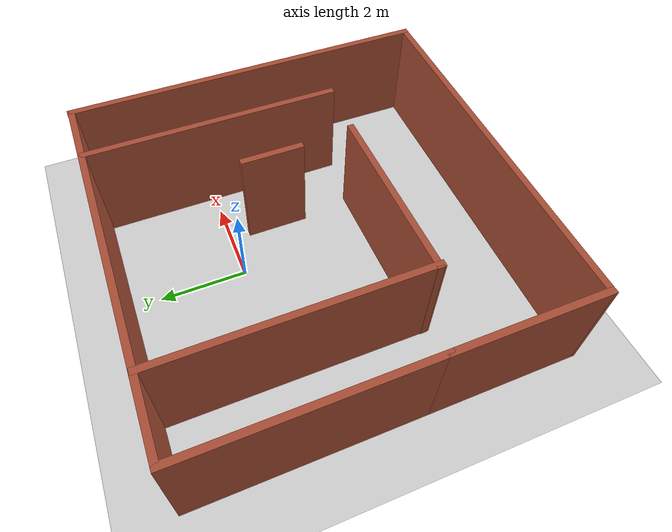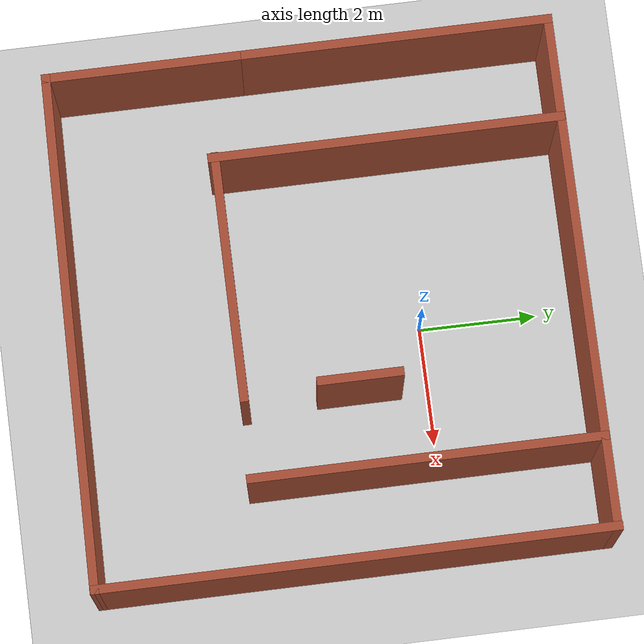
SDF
<sdf version="1.7">
 <world name="default">
  <light name="sun" type="directional">
   <pose>0 0 10 0 -0 0</pose>
   <diffuse>0.8 0.8 0.8 1</diffuse>
   <specular>0.2 0.2 0.2 1</specular>
   <attenuation>
    <range>1000</range>
    <constant>0.9</constant>
    <linear>0.01</linear>
    <quadratic>0.001</quadratic>
   </attenuation>
   <direction>-0.5 0.1 -0.9</direction>
   <spot><inner_angle>0</inner_angle><outer_angle>0</outer_angle><falloff>0</falloff></spot>
  </light>
  <model name="ground_plane">
   <static>1</static>
   <link name="link">
    <collision name="collision">
     <geometry><plane><normal>0 0 1</normal><size>100 100</size></plane></geometry>
     <surface>
      <contact><collide_bitmask>65535</collide_bitmask></contact>
      <friction><ode><mu>100</mu><mu2>50</mu2></ode></friction>
     </surface>
    </collision>
    <visual name="visual">
     <cast_shadows>0</cast_shadows>
     <geometry><plane><normal>0 0 1</normal><size>100 100</size></plane></geometry>
     <material>
      <script><uri>file://media/materials/scripts/gazebo.material</uri><name>Gazebo/Grey</name></script>
     </material>
    </visual>
   </link>
  </model>
  <gravity>0 0 -9.8</gravity>
  <magnetic_field>6e-06 2.3e-05 -4.2e-05</magnetic_field>
  <atmosphere type="adiabatic"/>
  <physics type="ode">
   <max_step_size>0.001</max_step_size>
   <real_time_factor>1</real_time_factor>
   <real_time_update_rate>1000</real_time_update_rate>
  </physics>
  <scene><ambient>0.4 0.4 0.4 1</ambient><background>0.7 0.7 0.7 1</background><shadows>1</shadows></scene>
  <audio><device>default</device></audio>
  <spherical_coordinates>
   <surface_model>EARTH_WGS84</surface_model>
   <latitude_deg>0</latitude_deg>
   <longitude_deg>0</longitude_deg>
   <elevation>0</elevation>
   <heading_deg>0</heading_deg>
  </spherical_coordinates>
  <model name="Room">
   <link name="Wall_6">
    <pose>1.24106 -0.929777 0 0 0 -1.57103</pose>
    <inertial>
     <inertia><ixx>0</ixx><ixy>0</ixy><ixz>0</ixz><iyy>0</iyy><iyz>0</iyz><izz>0</izz></inertia>
     <mass>0</mass>
    </inertial>
    <visual name="Wall_6_Visual">
     <pose>0 0 1.25 0 -0 0</pose>
     <geometry><box><size>1.45267 0.15 2.5</size></box></geometry>
     <material>
      <script><uri>file://media/materials/scripts/gazebo.material</uri><name>Gazebo/Bricks</name></script>
      <ambient>1 1 1 1</ambient>
      <shader type="pixel"/>
     </material>
     <meta><layer>0</layer></meta>
    </visual>
    <collision name="Wall_6_Collision">
     <pose>0 0 1.25 0 -0 0</pose>
     <geometry><box><size>1.45267 0.15 2.5</size></box></geometry>
     <surface>
      <friction>
       <ode><mu>1</mu><mu2>1</mu2><fdir1>0 0 0</fdir1><slip1>0</slip1><slip2>0</slip2></ode>
       <torsional>
        <coefficient>1</coefficient>
        <patch_radius>0</patch_radius>
        <surface_radius>0</surface_radius>
        <use_patch_radius>1</use_patch_radius>
        <ode><slip>0</slip></ode>
       </torsional>
      </friction>
      <bounce><restitution_coefficient>0</restitution_coefficient><threshold>1e+06</threshold></bounce>
      <contact>
       <collide_without_contact>0</collide_without_contact>
       <collide_without_contact_bitmask>1</collide_without_contact_bitmask>
       <collide_bitmask>1</collide_bitmask>
       <ode>
        <soft_cfm>0</soft_cfm>
        <soft_erp>0.2</soft_erp>
        <kp>1e+13</kp>
        <kd>1</kd>
        <max_vel>0.01</max_vel>
        <min_depth>0</min_depth>
       </ode>
       <bullet>
        <split_impulse>1</split_impulse>
        <split_impulse_penetration_threshold>-0.01</split_impulse_penetration_threshold>
        <soft_cfm>0</soft_cfm>
        <soft_erp>0.2</soft_erp>
        <kp>1e+13</kp>
        <kd>1</kd>
       </bullet>
      </contact>
     </surface>
    </collision>
   </link>
   <link name="Wall_7">
    <pose>2.70852 0.0015 0 0 0 -1.5708</pose>
    <visual name="Wall_7_Visual">
     <pose>0 0 1.25 0 -0 0</pose>
     <geometry><box><size>5.99409 0.15 2.5</size></box></geometry>
     <material>
      <script><uri>file://media/materials/scripts/gazebo.material</uri><name>Gazebo/Bricks</name></script>
      <ambient>1 1 1 1</ambient>
      <shader type="pixel"/>
     </material>
     <meta><layer>0</layer></meta>
    </visual>
    <collision name="Wall_7_Collision">
     <pose>0 0 1.25 0 -0 0</pose>
     <geometry><box><size>5.99409 0.15 2.5</size></box></geometry>
     <surface>
      <friction>
       <ode><mu>1</mu><mu2>1</mu2><fdir1>0 0 0</fdir1><slip1>0</slip1><slip2>0</slip2></ode>
       <torsional>
        <coefficient>1</coefficient>
        <patch_radius>0</patch_radius>
        <surface_radius>0</surface_radius>
        <use_patch_radius>1</use_patch_radius>
        <ode><slip>0</slip></ode>
       </torsional>
      </friction>
      <bounce><restitution_coefficient>0</restitution_coefficient><threshold>1e+06</threshold></bounce>
      <contact>
       <collide_without_contact>0</collide_without_contact>
       <collide_without_contact_bitmask>1</collide_without_contact_bitmask>
       <collide_bitmask>1</collide_bitmask>
       <ode>
        <soft_cfm>0</soft_cfm>
        <soft_erp>0.2</soft_erp>
        <kp>1e+13</kp>
        <kd>1</kd>
        <max_vel>0.01</max_vel>
        <min_depth>0</min_depth>
       </ode>
       <bullet>
        <split_impulse>1</split_impulse>
        <split_impulse_penetration_threshold>-0.01</split_impulse_penetration_threshold>
        <soft_cfm>0</soft_cfm>
        <soft_erp>0.2</soft_erp>
        <kp>1e+13</kp>
        <kd>1</kd>
       </bullet>
      </contact>
     </surface>
    </collision>
   </link>
   <link name="Wall_8">
    <pose>-0.680488 -2.87425 0 0 0 -3.14104</pose>
    <inertial>
     <inertia><ixx>0</ixx><ixy>0</ixy><ixz>0</ixz><iyy>0</iyy><iyz>0</iyz><izz>0</izz></inertia>
     <mass>0</mass>
    </inertial>
    <visual name="Wall_8_Visual">
     <pose>0 0 1.25 0 -0 0</pose>
     <geometry><box><size>4.2252 0.15 2.5</size></box></geometry>
     <material>
      <script><uri>file://media/materials/scripts/gazebo.material</uri><name>Gazebo/Bricks</name></script>
      <ambient>1 1 1 1</ambient>
      <shader type="pixel"/>
     </material>
     <meta><layer>0</layer></meta>
    </visual>
    <collision name="Wall_8_Collision">
     <pose>0 0 1.25 0 -0 0</pose>
     <geometry><box><size>4.2252 0.15 2.5</size></box></geometry>
     <surface>
      <friction>
       <ode><mu>1</mu><mu2>1</mu2><fdir1>0 0 0</fdir1><slip1>0</slip1><slip2>0</slip2></ode>
       <torsional>
        <coefficient>1</coefficient>
        <patch_radius>0</patch_radius>
        <surface_radius>0</surface_radius>
        <use_patch_radius>1</use_patch_radius>
        <ode><slip>0</slip></ode>
       </torsional>
      </friction>
      <bounce><restitution_coefficient>0</restitution_coefficient><threshold>1e+06</threshold></bounce>
      <contact>
       <collide_without_contact>0</collide_without_contact>
       <collide_without_contact_bitmask>1</collide_without_contact_bitmask>
       <collide_bitmask>1</collide_bitmask>
       <ode>
        <soft_cfm>0</soft_cfm>
        <soft_erp>0.2</soft_erp>
        <kp>1e+13</kp>
        <kd>1</kd>
        <max_vel>0.01</max_vel>
        <min_depth>0</min_depth>
       </ode>
       <bullet>
        <split_impulse>1</split_impulse>
        <split_impulse_penetration_threshold>-0.01</split_impulse_penetration_threshold>
        <soft_cfm>0</soft_cfm>
        <soft_erp>0.2</soft_erp>
        <kp>1e+13</kp>
        <kd>1</kd>
       </bullet>
      </contact>
     </surface>
    </collision>
   </link>
   <link name="Wall_9">
    <pose>-2.70848 -0.0015 0 0 -0 1.5708</pose>
    <visual name="Wall_9_Visual">
     <pose>0 0 1.25 0 -0 0</pose>
     <geometry><box><size>5.99412 0.15 2.5</size></box></geometry>
     <material>
      <script><uri>file://media/materials/scripts/gazebo.material</uri><name>Gazebo/Bricks</name></script>
      <ambient>1 1 1 1</ambient>
      <shader type="pixel"/>
     </material>
     <meta><layer>0</layer></meta>
    </visual>
    <collision name="Wall_9_Collision">
     <pose>0 0 1.25 0 -0 0</pose>
     <geometry><box><size>5.99412 0.15 2.5</size></box></geometry>
     <surface>
      <friction>
       <ode><mu>1</mu><mu2>1</mu2><fdir1>0 0 0</fdir1><slip1>0</slip1><slip2>0</slip2></ode>
       <torsional>
        <coefficient>1</coefficient>
        <patch_radius>0</patch_radius>
        <surface_radius>0</surface_radius>
        <use_patch_radius>1</use_patch_radius>
        <ode><slip>0</slip></ode>
       </torsional>
      </friction>
      <bounce><restitution_coefficient>0</restitution_coefficient><threshold>1e+06</threshold></bounce>
      <contact>
       <collide_without_contact>0</collide_without_contact>
       <collide_without_contact_bitmask>1</collide_without_contact_bitmask>
       <collide_bitmask>1</collide_bitmask>
       <ode>
        <soft_cfm>0</soft_cfm>
        <soft_erp>0.2</soft_erp>
        <kp>1e+13</kp>
        <kd>1</kd>
        <max_vel>0.01</max_vel>
        <min_depth>0</min_depth>
       </ode>
       <bullet>
        <split_impulse>1</split_impulse>
        <split_impulse_penetration_threshold>-0.01</split_impulse_penetration_threshold>
        <soft_cfm>0</soft_cfm>
        <soft_erp>0.2</soft_erp>
        <kp>1e+13</kp>
        <kd>1</kd>
       </bullet>
      </contact>
     </surface>
    </collision>
   </link>
   <static>1</static>
   <pose>-0.164389 -0.245138 0 0 -0 0</pose>
  </model>
  <model name="BOX">
   <pose>-0.256548 -1.60622 0 0 -0 0</pose>
   <link name="Wall_11">
    <collision name="Wall_11_Collision">
     <geometry><box><size>3.5 0.15 2.5</size></box></geometry>
     <pose>0 0 1.25 0 -0 0</pose>
    </collision>
    <visual name="Wall_11_Visual">
     <pose>0 0 1.25 0 -0 0</pose>
     <geometry><box><size>3.5 0.15 2.5</size></box></geometry>
     <material>
      <script><uri>file://media/materials/scripts/gazebo.material</uri><name>Gazebo/Bricks</name></script>
      <ambient>1 1 1 1</ambient>
     </material>
     <meta><layer>0</layer></meta>
    </visual>
    <pose>-4.3 -2.48268 0 0 -0 -1.5708</pose>
   </link>
   <link name="Wall_12">
    <collision name="Wall_12_Collision">
     <geometry><box><size>8.75129 0.15 2.5</size></box></geometry>
     <pose>0 0 1.25 0 -0 0</pose>
    </collision>
    <visual name="Wall_12_Visual">
     <pose>0 0 1.25 0 -0 0</pose>
     <geometry><box><size>8.75129 0.15 2.5</size></box></geometry>
     <material>
      <script><uri>file://media/materials/scripts/gazebo.material</uri><name>Gazebo/Bricks</name></script>
      <ambient>1 1 1 1</ambient>
     </material>
     <meta><layer>0</layer></meta>
    </visual>
    <pose>0 -4.22977 0 0 -0 -0.016764</pose>
   </link>
   <link name="Wall_13">
    <collision name="Wall_13_Collision">
     <geometry><box><size>8.75 0.15 2.5</size></box></geometry>
     <pose>0 0 1.25 0 -0 0</pose>
    </collision>
    <visual name="Wall_13_Visual">
     <pose>0 0 1.25 0 -0 0</pose>
     <geometry><box><size>8.75 0.15 2.5</size></box></geometry>
     <material>
      <script><uri>file://media/materials/scripts/gazebo.material</uri><name>Gazebo/Bricks</name></script>
      <ambient>1 1 1 1</ambient>
     </material>
     <meta><layer>0</layer></meta>
    </visual>
    <pose>4.3 0.003109 0 0 -0 1.5708</pose>
   </link>
   <link name="Wall_15">
    <collision name="Wall_15_Collision">
     <geometry><box><size>5.25 0.15 2.5</size></box></geometry>
     <pose>0 0 1.25 0 -0 0</pose>
    </collision>
    <visual name="Wall_15_Visual">
     <pose>0 0 1.25 0 -0 0</pose>
     <geometry><box><size>5.25 0.15 2.5</size></box></geometry>
     <material>
      <script><uri>file://media/materials/scripts/gazebo.material</uri><name>Gazebo/Bricks</name></script>
      <ambient>1 1 1 1</ambient>
     </material>
     <meta><layer>0</layer></meta>
    </visual>
    <pose>-4.3 1.74232 0 0 -0 1.5708</pose>
   </link>
   <link name="Wall_16">
    <collision name="Wall_16_Collision">
     <geometry><box><size>8.75 0.15 2.5</size></box></geometry>
     <pose>0 0 1.25 0 -0 0</pose>
    </collision>
    <visual name="Wall_16_Visual">
     <pose>0 0 1.25 0 -0 0</pose>
     <geometry><box><size>8.75 0.15 2.5</size></box></geometry>
     <material>
      <script><uri>file://media/materials/scripts/gazebo.material</uri><name>Gazebo/Bricks</name></script>
      <ambient>1 1 1 1</ambient>
     </material>
     <meta><layer>0</layer></meta>
    </visual>
    <pose>0 4.29232 0 0 -0 0</pose>
   </link>
   <static>1</static>
  </model>
 </world>
</sdf>
